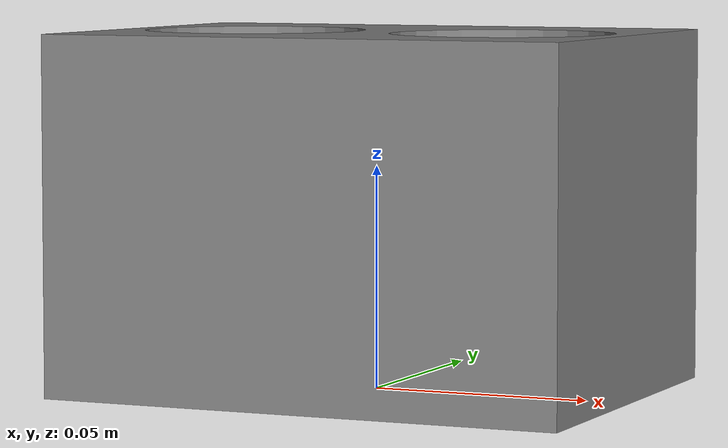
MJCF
<mujoco model="circle">
  <asset>
    <mesh name="circle" file="circle.obj"/>
    <mesh name="circle_collision_0" file="circle_collision_0.obj"/>
    <mesh name="circle_collision_1" file="circle_collision_1.obj"/>
    <mesh name="circle_collision_2" file="circle_collision_2.obj"/>
    <mesh name="circle_collision_3" file="circle_collision_3.obj"/>
    <mesh name="circle_collision_4" file="circle_collision_4.obj"/>
    <mesh name="circle_collision_5" file="circle_collision_5.obj"/>
    <mesh name="circle_collision_6" file="circle_collision_6.obj"/>
    <mesh name="circle_collision_7" file="circle_collision_7.obj"/>
    <mesh name="circle_collision_8" file="circle_collision_8.obj"/>
    <mesh name="circle_collision_9" file="circle_collision_9.obj"/>
    <mesh name="circle_collision_10" file="circle_collision_10.obj"/>
    <mesh name="circle_collision_11" file="circle_collision_11.obj"/>
    <mesh name="circle_collision_12" file="circle_collision_12.obj"/>
    <mesh name="circle_collision_13" file="circle_collision_13.obj"/>
    <mesh name="circle_collision_14" file="circle_collision_14.obj"/>
    <mesh name="circle_collision_15" file="circle_collision_15.obj"/>
    <mesh name="circle_collision_16" file="circle_collision_16.obj"/>
    <mesh name="circle_collision_17" file="circle_collision_17.obj"/>
    <mesh name="circle_collision_18" file="circle_collision_18.obj"/>
    <mesh name="circle_collision_19" file="circle_collision_19.obj"/>
    <mesh name="circle_collision_20" file="circle_collision_20.obj"/>
    <mesh name="circle_collision_21" file="circle_collision_21.obj"/>
    <mesh name="circle_collision_22" file="circle_collision_22.obj"/>
    <mesh name="circle_collision_23" file="circle_collision_23.obj"/>
    <mesh name="circle_collision_24" file="circle_collision_24.obj"/>
    <mesh name="circle_collision_25" file="circle_collision_25.obj"/>
    <mesh name="circle_collision_26" file="circle_collision_26.obj"/>
    <mesh name="circle_collision_27" file="circle_collision_27.obj"/>
    <mesh name="circle_collision_28" file="circle_collision_28.obj"/>
    <mesh name="circle_collision_29" file="circle_collision_29.obj"/>
    <mesh name="circle_collision_30" file="circle_collision_30.obj"/>
    <mesh name="circle_collision_31" file="circle_collision_31.obj"/>
  </asset>
  <worldbody>
    <body name="circle">
      <geom quat="0.707107 0.707107 0 0" mesh="circle" type="mesh" contype="0" conaffinity="0" group="2" density="100" friction="0 0 1"  condim="4" />
      <geom quat="0.707107 0.707107 0 0" mesh="circle_collision_0" type="mesh" group="3"/>
      <geom quat="0.707107 0.707107 0 0" mesh="circle_collision_1" type="mesh" group="3"/>
      <geom quat="0.707107 0.707107 0 0" mesh="circle_collision_2" type="mesh" group="3"/>
      <geom quat="0.707107 0.707107 0 0" mesh="circle_collision_3" type="mesh" group="3"/>
      <geom quat="0.707107 0.707107 0 0" mesh="circle_collision_4" type="mesh" group="3"/>
      <geom quat="0.707107 0.707107 0 0" mesh="circle_collision_5" type="mesh" group="3"/>
      <geom quat="0.707107 0.707107 0 0" mesh="circle_collision_6" type="mesh" group="3"/>
      <geom quat="0.707107 0.707107 0 0" mesh="circle_collision_7" type="mesh" group="3"/>
      <geom quat="0.707107 0.707107 0 0" mesh="circle_collision_8" type="mesh" group="3"/>
      <geom quat="0.707107 0.707107 0 0" mesh="circle_collision_9" type="mesh" group="3"/>
      <geom quat="0.707107 0.707107 0 0" mesh="circle_collision_10" type="mesh" group="3"/>
      <geom quat="0.707107 0.707107 0 0" mesh="circle_collision_11" type="mesh" group="3"/>
      <geom quat="0.707107 0.707107 0 0" mesh="circle_collision_12" type="mesh" group="3"/>
      <geom quat="0.707107 0.707107 0 0" mesh="circle_collision_13" type="mesh" group="3"/>
      <geom quat="0.707107 0.707107 0 0" mesh="circle_collision_14" type="mesh" group="3"/>
      <geom quat="0.707107 0.707107 0 0" mesh="circle_collision_15" type="mesh" group="3"/>
      <geom quat="0.707107 0.707107 0 0" mesh="circle_collision_16" type="mesh" group="3"/>
      <geom quat="0.707107 0.707107 0 0" mesh="circle_collision_17" type="mesh" group="3"/>
      <geom quat="0.707107 0.707107 0 0" mesh="circle_collision_18" type="mesh" group="3"/>
      <geom quat="0.707107 0.707107 0 0" mesh="circle_collision_19" type="mesh" group="3"/>
      <geom quat="0.707107 0.707107 0 0" mesh="circle_collision_20" type="mesh" group="3"/>
      <geom quat="0.707107 0.707107 0 0" mesh="circle_collision_21" type="mesh" group="3"/>
      <geom quat="0.707107 0.707107 0 0" mesh="circle_collision_22" type="mesh" group="3"/>
      <geom quat="0.707107 0.707107 0 0" mesh="circle_collision_23" type="mesh" group="3"/>
      <geom quat="0.707107 0.707107 0 0" mesh="circle_collision_24" type="mesh" group="3"/>
      <geom quat="0.707107 0.707107 0 0" mesh="circle_collision_25" type="mesh" group="3"/>
      <geom quat="0.707107 0.707107 0 0" mesh="circle_collision_26" type="mesh" group="3"/>
      <geom quat="0.707107 0.707107 0 0" mesh="circle_collision_27" type="mesh" group="3"/>
      <geom quat="0.707107 0.707107 0 0" mesh="circle_collision_28" type="mesh" group="3"/>
      <geom quat="0.707107 0.707107 0 0" mesh="circle_collision_29" type="mesh" group="3"/>
      <geom quat="0.707107 0.707107 0 0" mesh="circle_collision_30" type="mesh" group="3"/>
      <geom quat="0.707107 0.707107 0 0" mesh="circle_collision_31" type="mesh" group="3"/>
    </body>
  </worldbody>
</mujoco>
